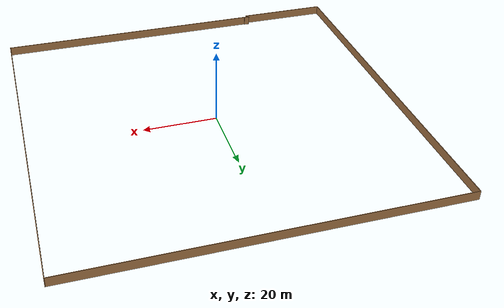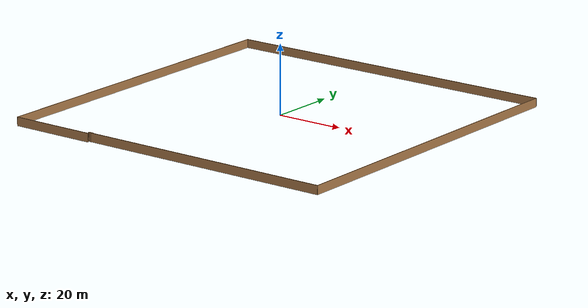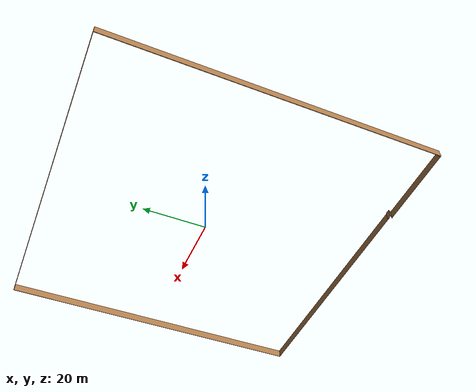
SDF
<?xml version='1.0'?>
<sdf version='1.6'>
  <model name='wall'>
    <pose frame=''>0.431671 -1.00987 0 0 -0 0</pose>
    <link name='Wall_10'>
      <collision name='Wall_10_Collision'>
        <geometry>
          <box>
            <size>99.25 0.15 2.5</size>
          </box>
        </geometry>
        <pose frame=''>0 0 1.25 0 -0 0</pose>
      </collision>
      <visual name='Wall_10_Visual'>
        <pose frame=''>0 0 1.25 0 -0 0</pose>
        <geometry>
          <box>
            <size>99.25 0.15 2.5</size>
          </box>
        </geometry>
        <material>
          <script>
            <uri>file://media/materials/scripts/gazebo.material</uri>
            <name>Gazebo/Wood</name>
          </script>
          <ambient>1 1 1 1</ambient>
        </material>
        <meta>
          <layer>0</layer>
        </meta>
      </visual>
      <pose frame=''>50.05 0.388722 0 0 -0 1.5708</pose>
    </link>
    <link name='Wall_11'>
      <collision name='Wall_11_Collision'>
        <geometry>
          <box>
            <size>100.25 0.15 2.5</size>
          </box>
        </geometry>
        <pose frame=''>0 0 1.25 0 -0 0</pose>
      </collision>
      <visual name='Wall_11_Visual'>
        <pose frame=''>0 0 1.25 0 -0 0</pose>
        <geometry>
          <box>
            <size>100.25 0.15 2.5</size>
          </box>
        </geometry>
        <material>
          <script>
            <uri>file://media/materials/scripts/gazebo.material</uri>
            <name>Gazebo/Wood</name>
          </script>
          <ambient>1 1 1 1</ambient>
        </material>
        <meta>
          <layer>0</layer>
        </meta>
      </visual>
      <pose frame=''>0 49.9387 0 0 -0 3.14159</pose>
    </link>
    <link name='Wall_12'>
      <collision name='Wall_12_Collision'>
        <geometry>
          <box>
            <size>100 0.15 2.5</size>
          </box>
        </geometry>
        <pose frame=''>0 0 1.25 0 -0 0</pose>
      </collision>
      <visual name='Wall_12_Visual'>
        <pose frame=''>0 0 1.25 0 -0 0</pose>
        <geometry>
          <box>
            <size>100 0.15 2.5</size>
          </box>
        </geometry>
        <material>
          <script>
            <uri>file://media/materials/scripts/gazebo.material</uri>
            <name>Gazebo/Wood</name>
          </script>
          <ambient>1 1 1 1</ambient>
        </material>
        <meta>
          <layer>0</layer>
        </meta>
      </visual>
      <pose frame=''>-50.05 0.013722 0 0 -0 -1.5708</pose>
    </link>
    <link name='Wall_13'>
      <collision name='Wall_13_Collision'>
        <geometry>
          <box>
            <size>25 0.15 2.5</size>
          </box>
        </geometry>
        <pose frame=''>0 0 1.25 0 -0 0</pose>
      </collision>
      <visual name='Wall_13_Visual'>
        <pose frame=''>0 0 1.25 0 -0 0</pose>
        <geometry>
          <box>
            <size>25 0.15 2.5</size>
          </box>
        </geometry>
        <material>
          <script>
            <uri>file://media/materials/scripts/gazebo.material</uri>
            <name>Gazebo/Wood</name>
          </script>
          <ambient>1 1 1 1</ambient>
        </material>
        <meta>
          <layer>0</layer>
        </meta>
      </visual>
      <pose frame=''>-37.625 -49.9113 0 0 -0 0</pose>
    </link>
    <link name='Wall_14'>
      <collision name='Wall_14_Collision'>
        <geometry>
          <box>
            <size>1.25 0.15 2.5</size>
          </box>
        </geometry>
        <pose frame=''>0 0 1.25 0 -0 0</pose>
      </collision>
      <visual name='Wall_14_Visual'>
        <pose frame=''>0 0 1.25 0 -0 0</pose>
        <geometry>
          <box>
            <size>1.25 0.15 2.5</size>
          </box>
        </geometry>
        <material>
          <script>
            <uri>file://media/materials/scripts/gazebo.material</uri>
            <name>Gazebo/Wood</name>
          </script>
          <ambient>1 1 1 1</ambient>
        </material>
        <meta>
          <layer>0</layer>
        </meta>
      </visual>
      <pose frame=''>-25.475 -49.435 0 0 -0 2.0944</pose>
    </link>
    <link name='Wall_15'>
      <collision name='Wall_15_Collision'>
        <geometry>
          <box>
            <size>1.5 0.15 2.5</size>
          </box>
        </geometry>
        <pose frame=''>0 0 1.25 0 -0 0</pose>
      </collision>
      <visual name='Wall_15_Visual'>
        <pose frame=''>0 0 1.25 0 -0 0</pose>
        <geometry>
          <box>
            <size>1.5 0.15 2.5</size>
          </box>
        </geometry>
        <material>
          <script>
            <uri>file://media/materials/scripts/gazebo.material</uri>
            <name>Gazebo/Wood</name>
          </script>
          <ambient>1 1 1 1</ambient>
        </material>
        <meta>
          <layer>0</layer>
        </meta>
      </visual>
      <pose frame=''>-25.075 -48.9586 0 0 -0 0</pose>
    </link>
    <link name='Wall_9'>
      <collision name='Wall_9_Collision'>
        <geometry>
          <box>
            <size>75 0.15 2.5</size>
          </box>
        </geometry>
        <pose frame=''>0 0 1.25 0 -0 0</pose>
      </collision>
      <visual name='Wall_9_Visual'>
        <pose frame=''>0 0 1.25 0 -0 0</pose>
        <geometry>
          <box>
            <size>75 0.15 2.5</size>
          </box>
        </geometry>
        <material>
          <script>
            <uri>file://media/materials/scripts/gazebo.material</uri>
            <name>Gazebo/Wood</name>
          </script>
          <ambient>1 1 1 1</ambient>
        </material>
        <meta>
          <layer>0</layer>
        </meta>
      </visual>
      <pose frame=''>12.625 -49.1613 0 0 -0 0</pose>
    </link>
    <static>1</static>
  </model>
</sdf>
